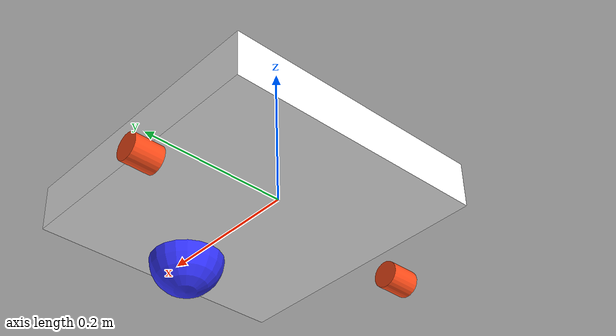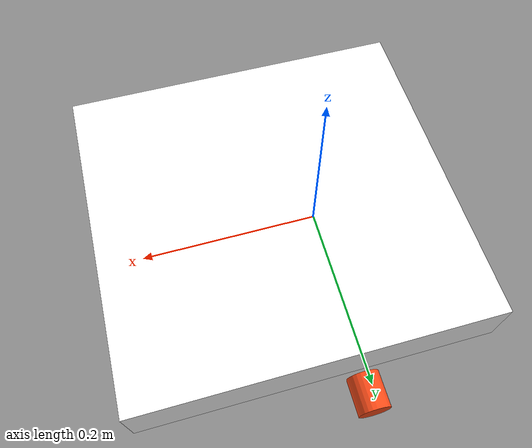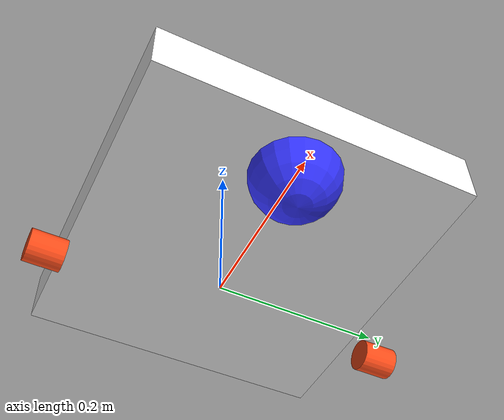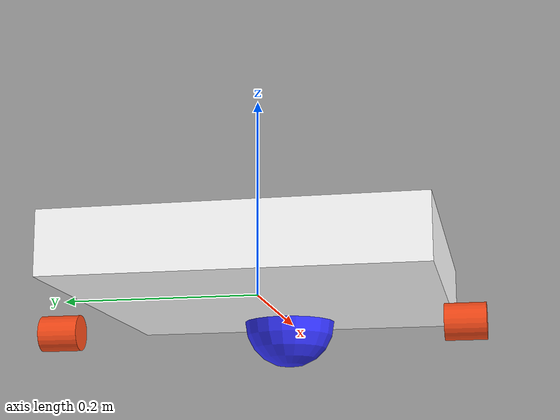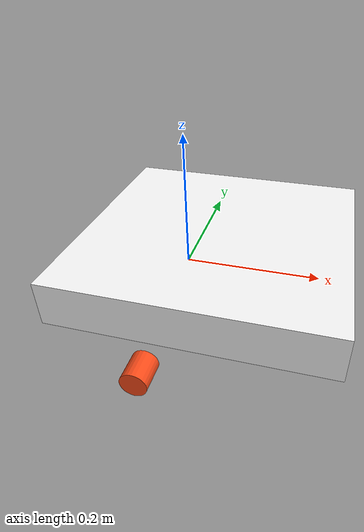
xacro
<?xml version="1.0"?>
<robot xmlns:xacro="http://www.ros.org/wiki/xacro">

    <xacro:include filename="inertial_macros.xacro"/>

    <material name="white">
        <color rgba="1 1 1 1"/>
    </material>

    <material name="orange">
        <color rgba="1 0.3 0.1 1"/>
    </material>

    <material name="blue">
        <color rgba="0.2 0.2 1 1"/>
    </material>

    <material name="black">
        <color rgba="0 0 0 1"/>
    </material>

    <!-- Base link-->

    <link name="base_link">
    </link>

    <!-- Base foot print -->

    <joint name="base_footprint_joint" type="fixed">
        <parent link="base_link"/>
        <child link="base_footprint"/>
        <origin xyz="0 0 0" rpy="0 0 0"/>
    </joint>

    <link name="base_footprint">
    </link>

    <!-- Chassis link-->

    <joint name="chassis_joint" type="fixed">
        <parent link="base_link"/>
        <child link="chassis"/>
        <origin xyz="-0.1 0 0"/>
    </joint>

    <link name="chassis">
        <visual>
            <origin xyz="0.15 0 0.03175" rpy="0 0 0"/>
            <geometry>
                <box size="0.38 0.365 0.0635"/>
            </geometry>
            <material name="white"/>
        </visual>
        <collision>
            <origin xyz="0.15 0 0.03175" rpy="0 0 0"/>
            <geometry>
                <box size="0.38 0.365 0.0635"/>
            </geometry>
        </collision>
        <xacro:inertial_box mass="5" x="0.38" y="0.365" z="0.0635">
            <origin xyz="0.15 0 0.03175" rpy="0 0 0"/>
        </xacro:inertial_box>
    </link>

    <!-- Left wheel link-->

    <joint name="left_wheel_joint" type="continuous">
        <parent link="base_link"/>
        <child link="left_wheel"/>
        <origin xyz="0 0.2025 -0.032" rpy="-${pi/2} 0 0"/>
        <axis xyz="0 0 1"/>
    </joint>

    <link name="left_wheel">
        <visual>
            <geometry>
                <cylinder radius="0.018" length="0.04" />
            </geometry>
            <material name="orange"/>
        </visual>
        <collision>
            <geometry>
                <sphere radius="0.018"/>
            </geometry>
        </collision>
        <xacro:inertial_cylinder mass="0.1" length="0.04" radius="0.018">
            <origin xyz="0 0 0" rpy="0 0 0"/>
        </xacro:inertial_cylinder>
    </link>

    <!-- Right wheel link-->

    <joint name="right_wheel_joint" type="continuous">
        <parent link="base_link"/>
        <child link="right_wheel"/>
        <origin xyz="0 -0.2025 -0.032" rpy="${pi/2} 0 0"/>
        <axis xyz="0 0 -1"/>
    </joint>

    <link name="right_wheel">
        <visual>
            <geometry>
                <cylinder radius="0.018" length="0.04" />
            </geometry>
            <material name="orange"/>
        </visual>
        <collision>
            <geometry>
                <sphere radius="0.018"/>
            </geometry>
        </collision>
        <xacro:inertial_cylinder mass="0.1" length="0.04" radius="0.018">
            <origin xyz="0 0 0" rpy="0 0 0"/>
        </xacro:inertial_cylinder>
    </link>

    <!-- Caster wheel link-->

    <joint name="caster_wheel_joint" type="fixed">
        <parent link="chassis"/>
        <child link="caster_wheel"/>
        <origin xyz="0.28 0 0"/>
    </joint>

    <link name="caster_wheel">
        <visual>
            <geometry>
                <sphere radius="0.05"/>
            </geometry>
            <material name="blue"/>
        </visual>
        <collision>
            <geometry>
                <sphere radius="0.05"/>
            </geometry>
        </collision>
        <xacro:inertial_sphere mass="0.1" radius="0.05">
            <origin xyz="0 0 0" rpy="0 0 0"/>
        </xacro:inertial_sphere>
    </link>

    <gazebo reference="caster_wheel">
        <material>Gazebo/Black</material>
        <mu1 value="0.001"/>
        <mu2 value="0.002"/>
    </gazebo>

</robot>
